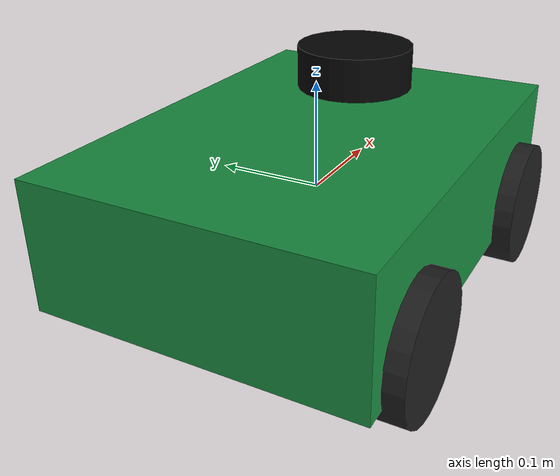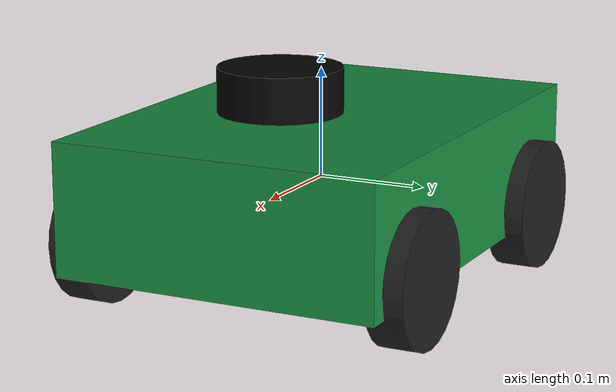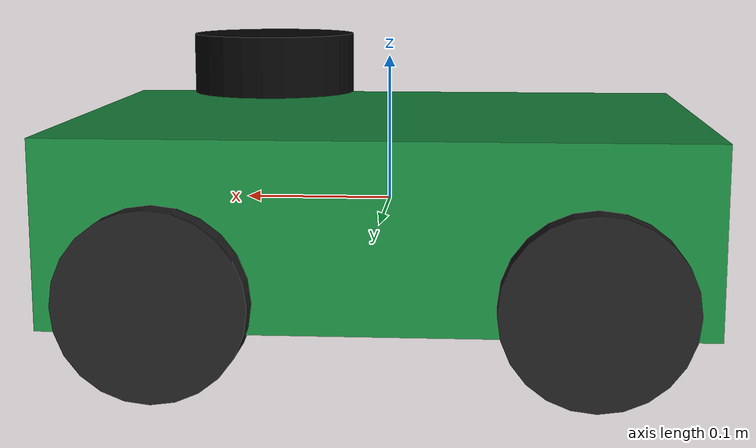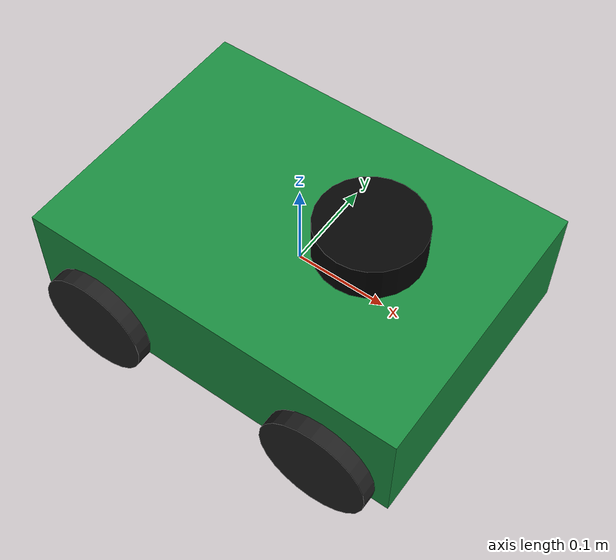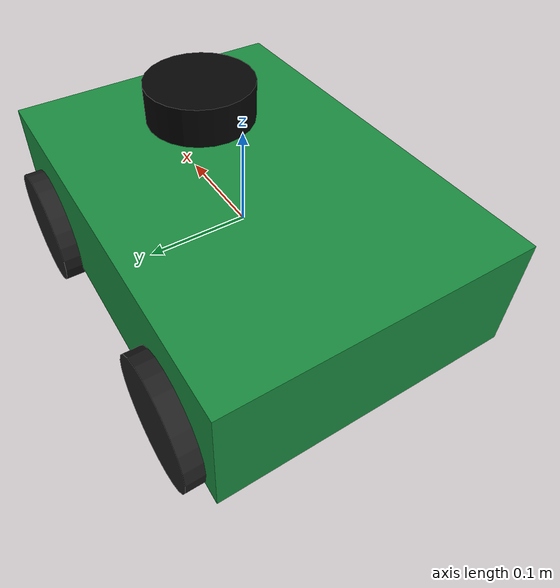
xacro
<?xml version="1.0"?>
<robot xmlns:xacro="http://www.ros.org/wiki/xacro" name="toy_rover">
  <xacro:property name="base_length" value="0.42"/>
  <xacro:property name="base_width" value="0.30"/>
  <xacro:property name="base_height" value="0.12"/>
  <xacro:property name="wheel_radius" value="0.06"/>
  <xacro:property name="wheel_width" value="0.035"/>
  <xacro:property name="wheel_separation" value="${base_width}"/>

  <link name="base_footprint"/>

  <joint name="base_footprint_joint" type="fixed">
    <parent link="base_footprint"/>
    <child link="base_link"/>
    <origin xyz="0 0 0" rpy="0 0 0"/>
  </joint>

  <link name="base_link">
    <visual>
      <geometry>
        <box size="${base_length} ${base_width} ${base_height}"/>
      </geometry>
      <material name="rover_green">
        <color rgba="0.1 0.55 0.25 1.0"/>
      </material>
    </visual>
    <collision>
      <geometry>
        <box size="${base_length} ${base_width} ${base_height}"/>
      </geometry>
    </collision>
    <inertial>
      <mass value="4.0"/>
      <origin xyz="0 0 0"/>
      <inertia ixx="0.05" ixy="0" ixz="0" iyy="0.08" iyz="0" izz="0.09"/>
    </inertial>
  </link>

  <xacro:macro name="wheel" params="name x y">
    <link name="${name}_wheel">
      <visual>
        <origin rpy="1.5708 0 0"/>
        <geometry><cylinder radius="${wheel_radius}" length="${wheel_width}"/></geometry>
      </visual>
      <collision>
        <origin rpy="1.5708 0 0"/>
        <geometry><cylinder radius="${wheel_radius}" length="${wheel_width}"/></geometry>
      </collision>
      <inertial>
        <mass value="0.25"/>
        <origin xyz="0 0 0"/>
        <inertia ixx="0.0003" ixy="0" ixz="0" iyy="0.0003" iyz="0" izz="0.0005"/>
      </inertial>
    </link>

    <joint name="${name}_wheel_joint" type="continuous">
      <parent link="base_link"/>
      <child link="${name}_wheel"/>
      <origin xyz="${x} ${y} -0.04" rpy="0 0 0"/>
      <axis xyz="0 1 0"/>
    </joint>

    <gazebo reference="${name}_wheel">
      <material>Gazebo/Black</material>
      <mu1>1.0</mu1>
      <mu2>1.0</mu2>
    </gazebo>
  </xacro:macro>

  <xacro:wheel name="left_front" x="${base_length * 0.32}" y="${base_width / 2.0}"/>
  <xacro:wheel name="left_rear" x="${-base_length * 0.32}" y="${base_width / 2.0}"/>
  <xacro:wheel name="right_front" x="${base_length * 0.32}" y="${-base_width / 2.0}"/>
  <xacro:wheel name="right_rear" x="${-base_length * 0.32}" y="${-base_width / 2.0}"/>

  <link name="lidar_link">
    <visual>
      <geometry><cylinder radius="0.055" length="0.04"/></geometry>
      <material name="lidar_black">
        <color rgba="0.02 0.02 0.02 1.0"/>
      </material>
    </visual>
    <inertial>
      <mass value="0.1"/>
      <origin xyz="0 0 0"/>
      <inertia ixx="0.00005" ixy="0" ixz="0" iyy="0.00005" iyz="0" izz="0.00005"/>
    </inertial>
  </link>

  <joint name="lidar_joint" type="fixed">
    <parent link="base_link"/>
    <child link="lidar_link"/>
    <origin xyz="0.08 0 ${base_height / 2.0 + 0.035}" rpy="0 0 0"/>
  </joint>

  <gazebo reference="base_link">
    <material>Gazebo/Green</material>
  </gazebo>

  <gazebo reference="lidar_link">
    <material>Gazebo/Black</material>
    <sensor name="lidar" type="gpu_lidar">
      <topic>/scan</topic>
      <update_rate>20</update_rate>
      <always_on>true</always_on>
      <visualize>true</visualize>
      <ray>
        <scan>
          <horizontal>
            <samples>360</samples>
            <resolution>1</resolution>
            <min_angle>-3.14159</min_angle>
            <max_angle>3.14159</max_angle>
          </horizontal>
        </scan>
        <range>
          <min>0.08</min>
          <max>12.0</max>
          <resolution>0.01</resolution>
        </range>
      </ray>
    </sensor>
  </gazebo>

  <gazebo>
    <plugin filename="gz-sim-diff-drive-system" name="gz::sim::systems::DiffDrive">
      <left_joint>left_front_wheel_joint</left_joint>
      <left_joint>left_rear_wheel_joint</left_joint>
      <right_joint>right_front_wheel_joint</right_joint>
      <right_joint>right_rear_wheel_joint</right_joint>
      <wheel_separation>${wheel_separation}</wheel_separation>
      <wheel_radius>${wheel_radius}</wheel_radius>
      <topic>/cmd_vel</topic>
      <odom_topic>/wheel_odom</odom_topic>
      <frame_id>odom</frame_id>
      <child_frame_id>base_footprint</child_frame_id>
      <odom_publish_frequency>30</odom_publish_frequency>
    </plugin>

    <!-- Simulation truth: unlike wheel integration, this follows the model's
         physical pose even when four-wheel skid steering slips. -->
    <plugin filename="gz-sim-odometry-publisher-system"
            name="gz::sim::systems::OdometryPublisher">
      <odom_topic>/odom</odom_topic>
      <odom_frame>odom</odom_frame>
      <robot_base_frame>base_footprint</robot_base_frame>
      <dimensions>2</dimensions>
      <odom_publish_frequency>30</odom_publish_frequency>
    </plugin>
  </gazebo>
</robot>
